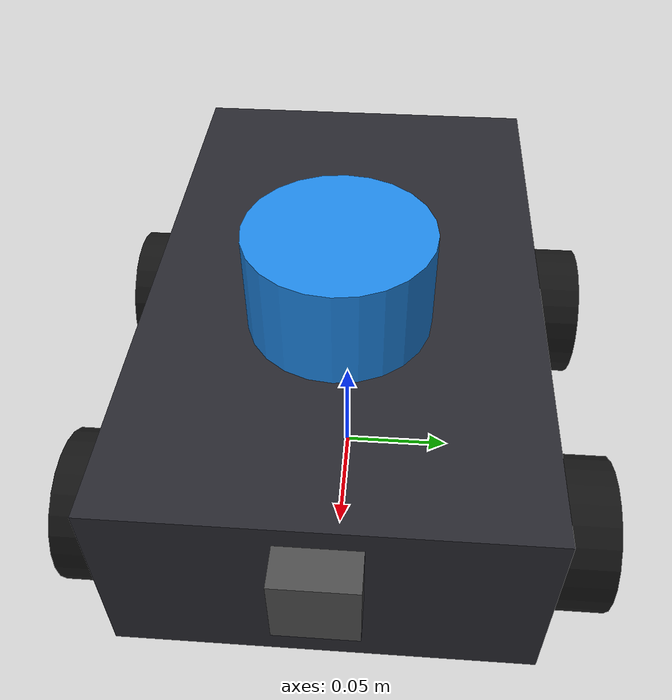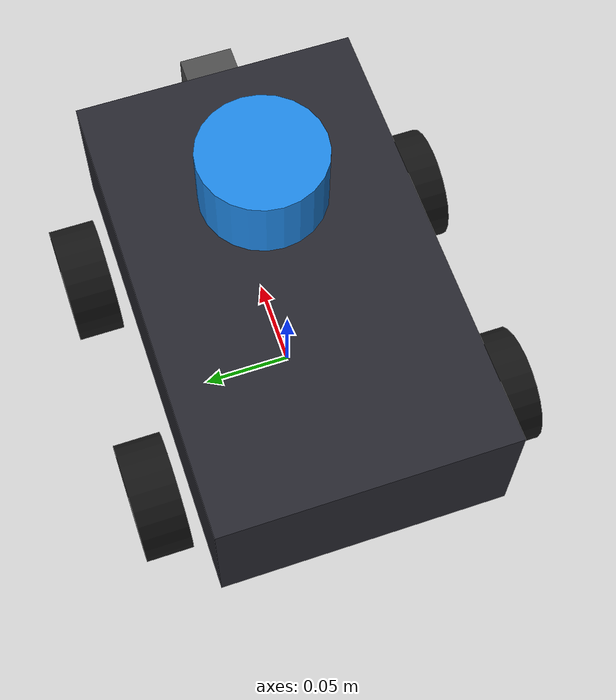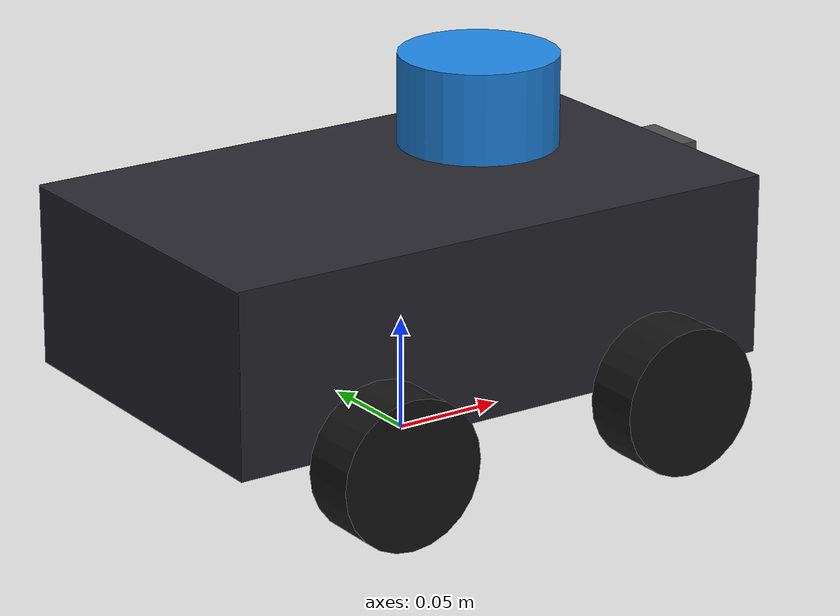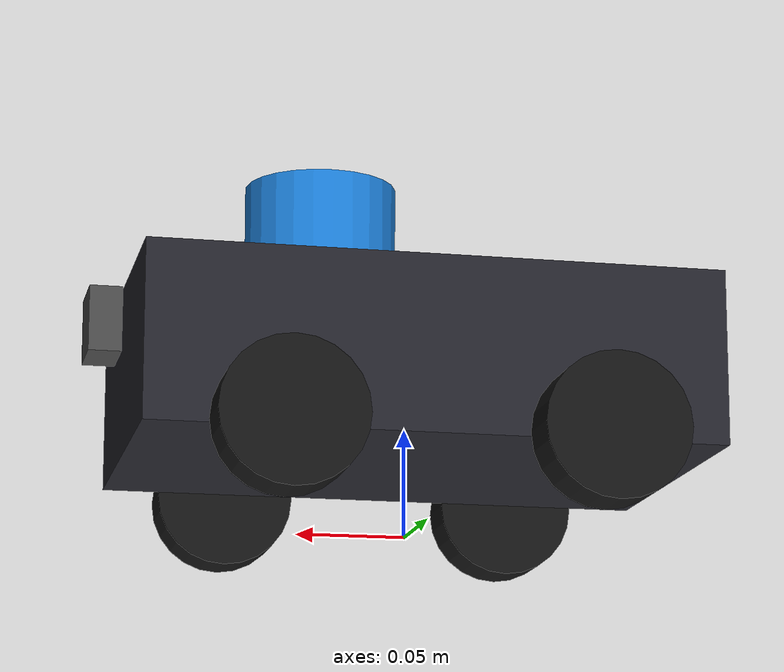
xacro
<?xml version="1.0"?>
<robot xmlns:xacro="http://www.ros.org/wiki/xacro" name="forensic_robot">

    <!-- Core robot description (chassis, 4 wheels, base_footprint, base_link) -->
    <xacro:include filename="robot_core.xacro" />

    <!-- Sensor links & Gazebo sensors (LiDAR, Camera, IMU) -->
    <xacro:include filename="sensors.xacro" />

    <!-- Gazebo plugins (DiffDrive, JointStatePublisher) -->
    <xacro:include filename="gazebo_control.xacro" />

</robot>

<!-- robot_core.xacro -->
<robot xmlns:xacro="http://www.ros.org/wiki/xacro">

    <xacro:include filename="inertial_macros.xacro" />

    <!-- Dimensional Properties -->
    <xacro:property name="chassis_length" value="0.260" />
    <xacro:property name="chassis_width" value="0.160" />
    <xacro:property name="chassis_height" value="0.080" />
    <xacro:property name="chassis_mass" value="1.20" />

    <xacro:property name="wheel_radius" value="0.0325" />
    <xacro:property name="wheel_thickness" value="0.026" />
    <xacro:property name="wheel_mass" value="0.08" />
    <xacro:property name="wheel_track" value="0.200" />
    <xacro:property name="wheel_base" value="0.140" />

    <!-- Colors -->
    <material name="chassis_color">
        <color rgba="0.15 0.15 0.18 1.0" />
    </material>
    <material name="accent_blue">
        <color rgba="0.12 0.53 0.90 1.0" />
    </material>
    <material name="wheel_black">
        <color rgba="0.08 0.08 0.08 1.0" />
    </material>
    <material name="sensor_grey">
        <color rgba="0.30 0.30 0.30 1.0" />
    </material>
    <material name="lens_glass">
        <color rgba="0.0 0.8 0.8 0.8" />
    </material>

    <!-- BASE FOOTPRINT (Ground projection) -->
    <link name="base_footprint" />

    <!-- BASE LINK (Center of the wheel axles) -->
    <joint name="base_joint" type="fixed">
        <parent link="base_footprint" />
        <child link="base_link" />
        <origin xyz="0 0 ${wheel_radius}" rpy="0 0 0" />
    </joint>

    <link name="base_link" />

    <!-- CHASSIS LINK -->
    <joint name="chassis_joint" type="fixed">
        <parent link="base_link" />
        <child link="chassis" />
        <origin xyz="0 0 ${chassis_height/2}" rpy="0 0 0" />
    </joint>

    <link name="chassis">
        <visual>
            <geometry>
                <box size="${chassis_length} ${chassis_width} ${chassis_height}" />
            </geometry>
            <material name="chassis_color" />
        </visual>
        <collision>
            <geometry>
                <box size="${chassis_length} ${chassis_width} ${chassis_height}" />
            </geometry>
        </collision>
        <xacro:inertial_box mass="${chassis_mass}" x="${chassis_length}" y="${chassis_width}" z="${chassis_height}">
            <origin xyz="0 0 0" rpy="0 0 0" />
        </xacro:inertial_box>
    </link>

    <gazebo reference="chassis">
        <material>Gazebo/DarkGrey</material>
    </gazebo>

    <!-- WHEEL MACRO -->
    <xacro:macro name="wheel" params="prefix x_reflect y_reflect">
        <joint name="${prefix}_wheel_joint" type="continuous">
            <parent link="base_link" />
            <child link="${prefix}_wheel" />
            <origin xyz="${x_reflect * wheel_base/2} ${y_reflect * wheel_track/2} 0" rpy="-${pi/2} 0 0" />
            <axis xyz="0 0 1" />
        </joint>

        <link name="${prefix}_wheel">
            <visual>
                <geometry>
                    <cylinder radius="${wheel_radius}" length="${wheel_thickness}" />
                </geometry>
                <material name="wheel_black" />
            </visual>
            <collision>
                <geometry>
                    <cylinder radius="${wheel_radius}" length="${wheel_thickness}" />
                </geometry>
            </collision>
            <xacro:inertial_cylinder mass="${wheel_mass}" length="${wheel_thickness}" radius="${wheel_radius}">
                <origin xyz="0 0 0" rpy="0 0 0" />
            </xacro:inertial_cylinder>
        </link>

        <gazebo reference="${prefix}_wheel">
            <material>Gazebo/Black</material>
            <mu1 value="1.0" />
            <mu2 value="1.0" />
            <kp value="10000000.0" />
            <kd value="1.0" />
            <minDepth>0.001</minDepth>
        </gazebo>
    </xacro:macro>

    <!-- 4 WHEELS (Front & Rear, Left & Right) -->
    <xacro:wheel prefix="front_left"  x_reflect="1"  y_reflect="1"  />
    <xacro:wheel prefix="front_right" x_reflect="1"  y_reflect="-1" />
    <xacro:wheel prefix="back_left"   x_reflect="-1" y_reflect="1"  />
    <xacro:wheel prefix="back_right"  x_reflect="-1" y_reflect="-1" />

</robot>

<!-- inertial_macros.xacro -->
<robot xmlns:xacro="http://www.ros.org/wiki/xacro">

    <!-- Box inertia macro -->
    <xacro:macro name="inertial_box" params="mass x y z *origin">
        <inertial>
            <xacro:insert_block name="origin"/>
            <mass value="${mass}" />
            <inertia ixx="${(1/12) * mass * (y*y + z*z)}" ixy="0.0" ixz="0.0"
                     iyy="${(1/12) * mass * (x*x + z*z)}" iyz="0.0"
                     izz="${(1/12) * mass * (x*x + y*y)}" />
        </inertial>
    </xacro:macro>

    <!-- Cylinder inertia macro (along Z-axis) -->
    <xacro:macro name="inertial_cylinder" params="mass length radius *origin">
        <inertial>
            <xacro:insert_block name="origin"/>
            <mass value="${mass}" />
            <inertia ixx="${(1/12) * mass * (3*radius*radius + length*length)}" ixy="0.0" ixz="0.0"
                     iyy="${(1/12) * mass * (3*radius*radius + length*length)}" iyz="0.0"
                     izz="${(1/2) * mass * (radius*radius)}" />
        </inertial>
    </xacro:macro>

    <!-- Sphere inertia macro -->
    <xacro:macro name="inertial_sphere" params="mass radius *origin">
        <inertial>
            <xacro:insert_block name="origin"/>
            <mass value="${mass}" />
            <inertia ixx="${(2/5) * mass * radius * radius}" ixy="0.0" ixz="0.0"
                     iyy="${(2/5) * mass * radius * radius}" iyz="0.0"
                     izz="${(2/5) * mass * radius * radius}" />
        </inertial>
    </xacro:macro>

</robot>

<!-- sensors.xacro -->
<robot xmlns:xacro="http://www.ros.org/wiki/xacro">

    <xacro:include filename="inertial_macros.xacro" />

    <!-- ==================== 1. LIDAR SENSOR ==================== -->
    <joint name="laser_joint" type="fixed">
        <parent link="chassis" />
        <child link="laser_frame" />
        <origin xyz="0.04 0 ${chassis_height/2 + 0.03}" rpy="0 0 0" />
    </joint>

    <link name="laser_frame">
        <visual>
            <geometry>
                <cylinder radius="0.035" length="0.04" />
            </geometry>
            <material name="accent_blue" />
        </visual>
        <collision>
            <geometry>
                <cylinder radius="0.035" length="0.04" />
            </geometry>
        </collision>
        <xacro:inertial_cylinder mass="0.12" length="0.04" radius="0.035">
            <origin xyz="0 0 0" rpy="0 0 0" />
        </xacro:inertial_cylinder>
    </link>

    <gazebo reference="laser_frame">
        <material>Gazebo/Blue</material>
        <sensor name="lidar" type="gpu_lidar">
            <pose>0 0 0 0 0 0</pose>
            <always_on>true</always_on>
            <visualize>true</visualize>
            <update_rate>10</update_rate>
            <ray>
                <scan>
                    <horizontal>
                        <samples>360</samples>
                        <resolution>1</resolution>
                        <min_angle>-3.14159265</min_angle>
                        <max_angle>3.14159265</max_angle>
                    </horizontal>
                </scan>
                <range>
                    <min>0.12</min>
                    <max>12.0</max>
                    <resolution>0.01</resolution>
                </range>
                <noise>
                    <type>gaussian</type>
                    <mean>0.0</mean>
                    <stddev>0.01</stddev>
                </noise>
            </ray>
            <gz_frame_id>laser_frame</gz_frame_id>
        </sensor>
    </gazebo>

    <!-- ==================== 2. PI CAMERA SENSOR ==================== -->
    <joint name="camera_joint" type="fixed">
        <parent link="chassis" />
        <child link="camera_link" />
        <origin xyz="${chassis_length/2 + 0.01} 0 ${chassis_height/4}" rpy="0 0 0" />
    </joint>

    <link name="camera_link">
        <visual>
            <geometry>
                <box size="0.015 0.030 0.030" />
            </geometry>
            <material name="sensor_grey" />
        </visual>
        <collision>
            <geometry>
                <box size="0.015 0.030 0.030" />
            </geometry>
        </collision>
        <xacro:inertial_box mass="0.02" x="0.015" y="0.030" z="0.030">
            <origin xyz="0 0 0" rpy="0 0 0" />
        </xacro:inertial_box>
    </link>

    <!-- Camera optical frame standard (z-forward, x-right, y-down) -->
    <joint name="camera_optical_joint" type="fixed">
        <parent link="camera_link" />
        <child link="camera_optical_link" />
        <origin xyz="0 0 0" rpy="-${pi/2} 0 -${pi/2}" />
    </joint>

    <link name="camera_optical_link" />

    <gazebo reference="camera_link">
        <material>Gazebo/Grey</material>
        <sensor name="camera" type="camera">
            <pose>0 0 0 0 0 0</pose>
            <always_on>true</always_on>
            <visualize>true</visualize>
            <update_rate>30</update_rate>
            <camera>
                <horizontal_fov>1.15</horizontal_fov>
                <image>
                    <width>640</width>
                    <height>480</height>
                    <format>R8G8B8</format>
                </image>
                <clip>
                    <near>0.05</near>
                    <far>20.0</far>
                </clip>
            </camera>
            <gz_frame_id>camera_optical_link</gz_frame_id>
        </sensor>
    </gazebo>

    <!-- ==================== 3. IMU SENSOR ==================== -->
    <joint name="imu_joint" type="fixed">
        <parent link="chassis" />
        <child link="imu_link" />
        <origin xyz="0 0 0" rpy="0 0 0" />
    </joint>

    <link name="imu_link">
        <visual>
            <geometry>
                <box size="0.02 0.02 0.005" />
            </geometry>
            <material name="sensor_grey" />
        </visual>
        <xacro:inertial_box mass="0.01" x="0.02" y="0.02" z="0.005">
            <origin xyz="0 0 0" rpy="0 0 0" />
        </xacro:inertial_box>
    </link>

    <gazebo reference="imu_link">
        <sensor name="imu_sensor" type="imu">
            <always_on>true</always_on>
            <update_rate>50</update_rate>
            <visualize>false</visualize>
            <gz_frame_id>imu_link</gz_frame_id>
        </sensor>
    </gazebo>

</robot>
